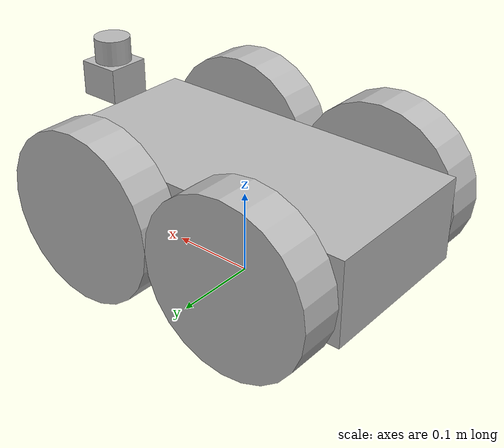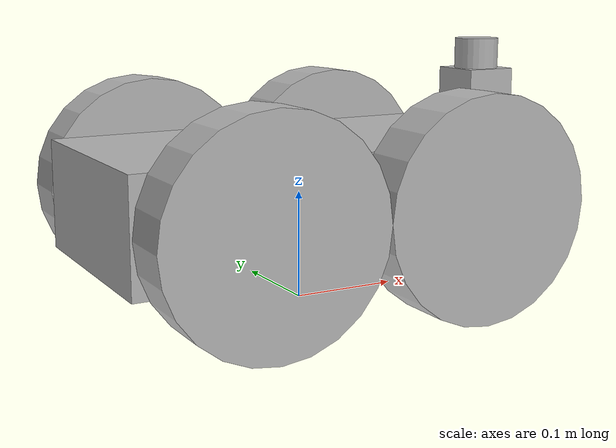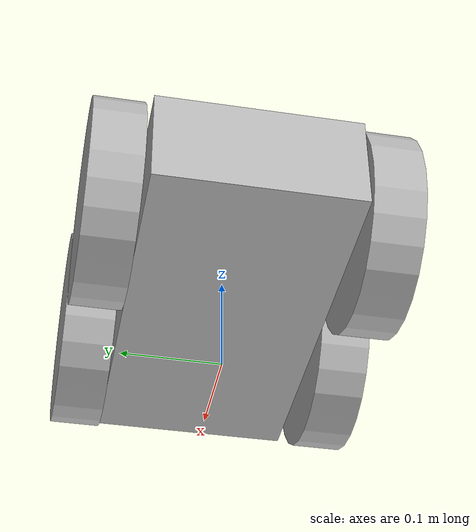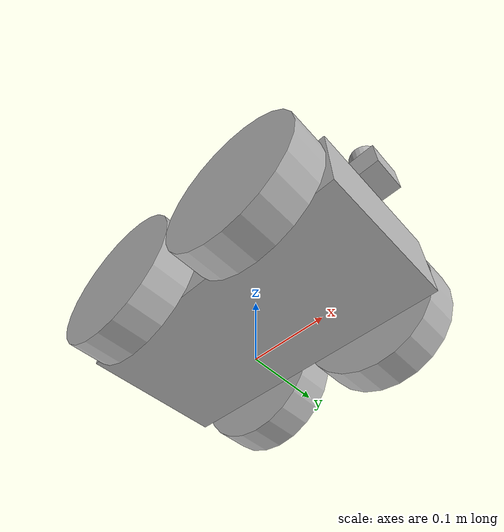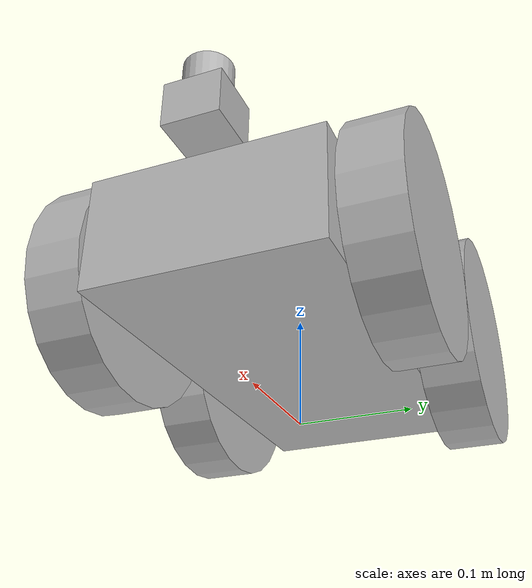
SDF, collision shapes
<?xml version='1.0'?>
<sdf version='1.4'>
  <model name="robot">
    <static>false</static>

      <link name='chassis'>
        <pose>0 0 .1 0 0 0</pose>

        <collision name='collision'>
          <geometry>
            <box>
              <size>.4 .2 .1</size>
            </box>
          </geometry>
        </collision>

        <visual name='visual'>
          <geometry>
            <box>
              <size>.4 .2 .1</size>
            </box>
          </geometry>
        </visual>
      </link>

      <link name='left_front_wheel'>
        <pose>0.1 0.13 0.1 0 1.5707 1.5707</pose>
        <collision name='collision'>
          <geometry>
            <cylinder>
              <radius>.1</radius>
              <length>.05</length>
            </cylinder>
          </geometry>
        </collision>

        <visual name='visual'>
          <geometry>
            <cylinder>
              <radius>.1</radius>
              <length>.05</length>
            </cylinder>
          </geometry>
        </visual>
      </link>

      <link name='left_rear_wheel'>
        <pose>-0.1 0.13 0.1 0 1.5707 1.5707</pose>
        <collision name='collision'>
          <geometry>
            <cylinder>
              <radius>.1</radius>
              <length>.05</length>
            </cylinder>
          </geometry>
        </collision>

        <visual name='visual'>
          <geometry>
            <cylinder>
              <radius>.1</radius>
              <length>.05</length>
            </cylinder>
          </geometry>
        </visual>
      </link>

      <link name='right_front_wheel'>
        <pose>0.1 -0.13 0.1 0 1.5707 1.5707</pose>
        <collision name='collision'>
          <geometry>
            <cylinder>
              <radius>.1</radius>
              <length>.05</length>
            </cylinder>
          </geometry>
        </collision>

        <visual name='visual'>
          <geometry>
            <cylinder>
              <radius>.1</radius>
              <length>.05</length>
            </cylinder>
          </geometry>
        </visual>
      </link>

      <link name='right_rear_wheel'>
        <pose>-0.1 -0.13 0.1 0 1.5707 1.5707</pose>
        <collision name='collision'>
          <geometry>
            <cylinder>
              <radius>.1</radius>
              <length>.05</length>
            </cylinder>
          </geometry>
        </collision>

        <visual name='visual'>
          <geometry>
            <cylinder>
              <radius>.1</radius>
              <length>.05</length>
            </cylinder>
          </geometry>
        </visual>
      </link>

    <joint type='revolute' name='left_front_wheel_hinge'>
      <pose>0 0 -0.03 0 0 0</pose>
      <child>left_front_wheel</child>
      <parent>chassis</parent>
      <axis>
        <xyz>0 1 0</xyz>
      </axis>
    </joint>

    <joint type='revolute' name='left_rear_wheel_hinge'>
      <pose>0 0 -0.03 0 0 0</pose>
      <child>left_rear_wheel</child>
      <parent>chassis</parent>
      <axis>
        <xyz>0 1 0</xyz>
      </axis>
    </joint>

    <joint type='revolute' name='right_front_wheel_hinge'>
      <pose>0 0 0.03 0 0 0</pose>
      <child>right_front_wheel</child>
      <parent>chassis</parent>
      <axis>
        <xyz>0 1 0</xyz>
      </axis>
    </joint>

    <joint type='revolute' name='right_rear_wheel_hinge'>
      <pose>0 0 0.03 0 0 0</pose>
      <child>right_rear_wheel</child>
      <parent>chassis</parent>
      <axis>
        <xyz>0 1 0</xyz>
      </axis>
    </joint>

    <include>
      <uri>model://hokuyo</uri>
      <pose>0.2 0 0.2 0 0 0</pose>
    </include>
    <joint name="hokuyo_joint" type="fixed">
      <child>hokuyo::link</child>
      <parent>chassis</parent>
    </joint>

  </model>
</sdf>

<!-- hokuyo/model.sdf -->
<sdf version="1.5">
  <model name="hokuyo">
    <pose>0 0 0.035 0 0 0</pose>
    <link name="link">
      <inertial>
        <mass>0.1</mass>
      </inertial>
      <visual name="visual">
        <geometry>
          <mesh>
            <uri>model://hokuyo/meshes/hokuyo.dae</uri>
          </mesh>
        </geometry>
      </visual>
      <collision name="collision-base">
        <pose>0 0 -0.0145 0 0 0</pose>
        <geometry>
          <box>
            <size>0.05 0.05 0.041</size>
          </box>
        </geometry>
      </collision>
      <collision name="collision-top">
        <pose>0 0 0.0205 0 0 0</pose>
        <geometry>
          <cylinder>
            <radius>0.021</radius>
            <length>0.029</length>
          </cylinder>
        </geometry>
      </collision>
      <sensor name="laser" type="ray">
        <pose>0.01 0 0.0175 0 -0 0</pose>
        <ray>
          <scan>
            <horizontal>
              <samples>1</samples>
              <resolution>1</resolution>
              <min_angle>0</min_angle>
              <max_angle>0</max_angle>
            </horizontal>
          </scan>
          <range>
            <min>0.08</min>
            <max>10</max>
            <resolution>0.01</resolution>
          </range>
        </ray>
        <plugin name="laser" filename="libgazebo_ros_laser.so">
          <robotNamespace>robot</robotNamespace>
          <topicName>laser_back</topicName>
        </plugin>
        <always_on>1</always_on>
        <update_rate>30</update_rate>
        <visualize>true</visualize>
      </sensor>
    </link>
  </model>
</sdf>
